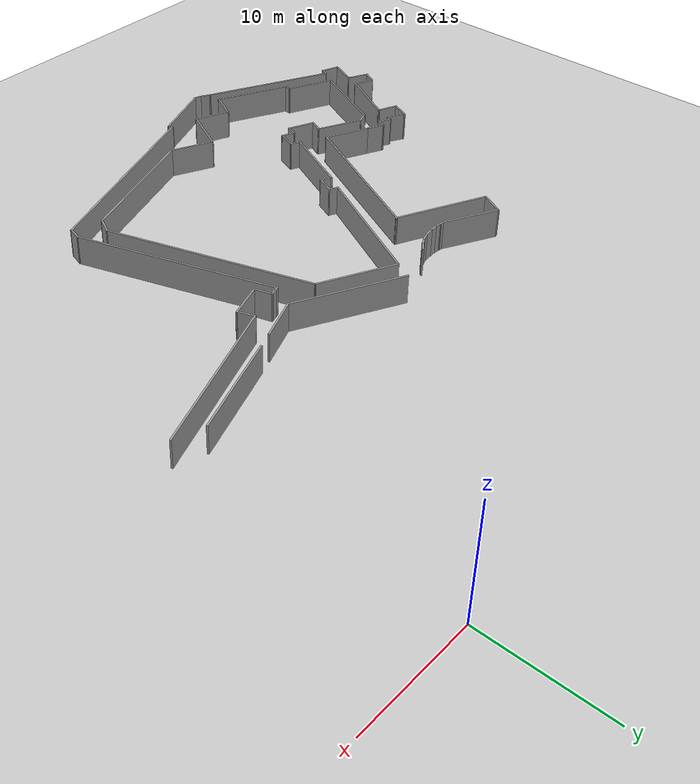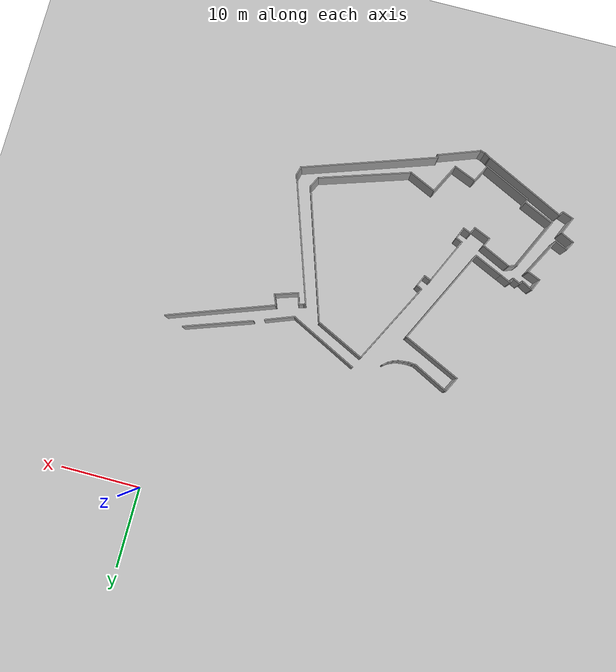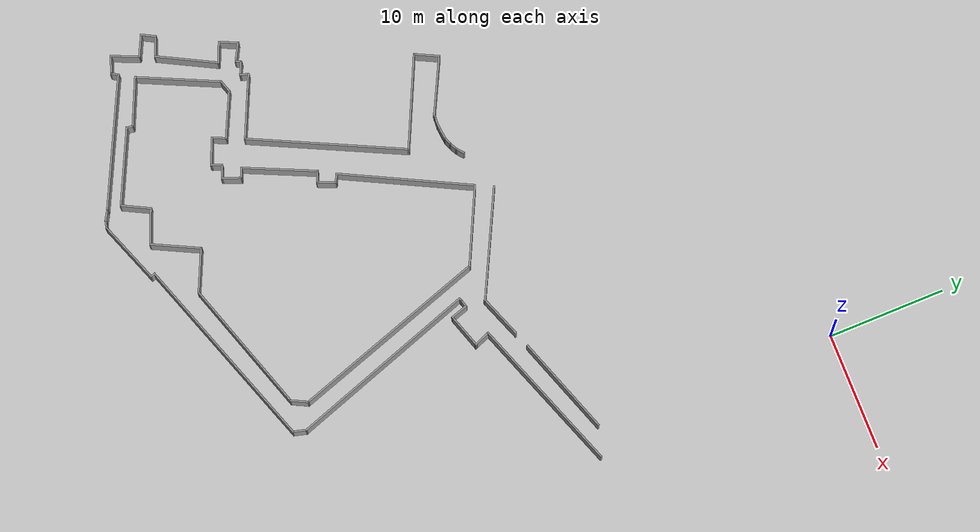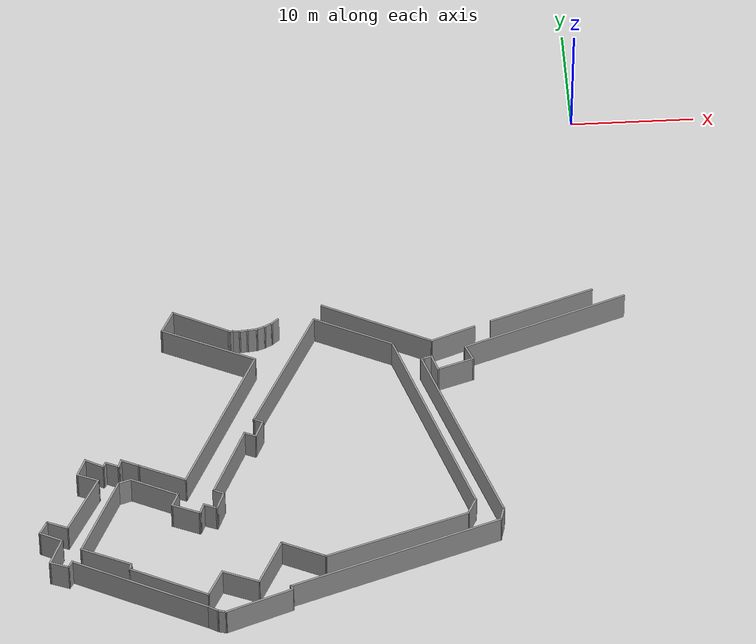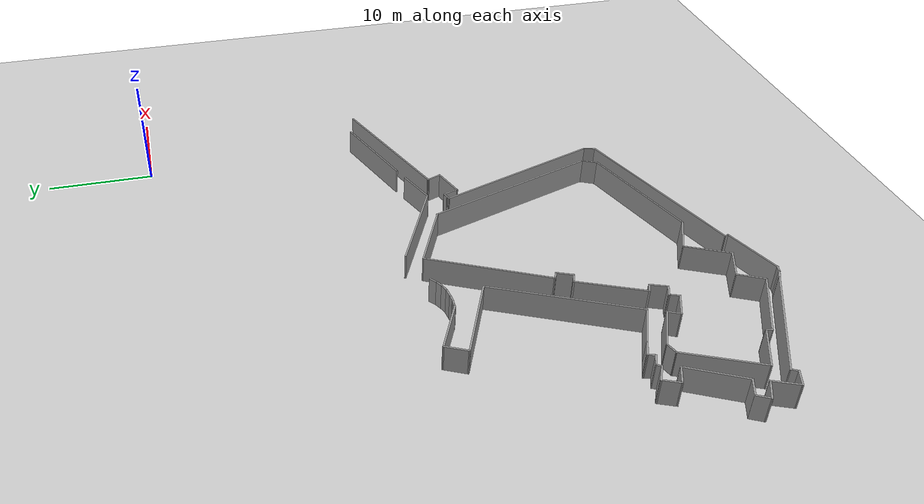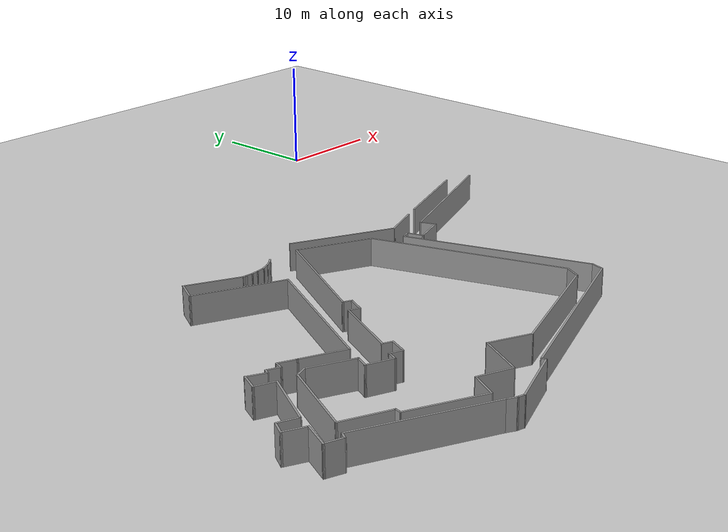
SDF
<sdf version="1.6">
 <world name="default">
  <model name="ground_plane">
   <static>1</static>
   <link name="link">
    <collision name="collision">
     <geometry><plane><normal>0 0 1</normal><size>100 100</size></plane></geometry>
     <surface><friction><ode><mu>100</mu><mu2>50</mu2></ode></friction></surface>
    </collision>
    <visual name="visual">
     <cast_shadows>0</cast_shadows>
     <geometry><plane><normal>0 0 1</normal><size>100 100</size></plane></geometry>
     <material>
      <script><uri>file://media/materials/scripts/gazebo.material</uri><name>Gazebo/Grey</name></script>
     </material>
    </visual>
   </link>
  </model>
  <model name="3rd_floor">
   <pose>-15.2077 -10.9942 0 0 -0 0</pose>
   <link name="Wall_19">
    <collision name="Wall_19_Collision">
     <geometry><box><size>13.8931 0.15 2.5</size></box></geometry>
     <pose>0 0 1.25 0 -0 0</pose>
    </collision>
    <visual name="Wall_19_Visual">
     <pose>0 0 1.25 0 -0 0</pose>
     <geometry><box><size>13.8931 0.15 2.5</size></box></geometry>
     <material>
      <script><uri>file://media/materials/scripts/gazebo.material</uri><name>Gazebo/Grey</name></script>
      <ambient>1 1 1 1</ambient>
     </material>
    </visual>
    <pose>11.0965 -12.7763 0 0 0 -2.79211</pose>
   </link>
   <link name="Wall_20">
    <collision name="Wall_20_Collision">
     <geometry><box><size>1.53196 0.15 2.5</size></box></geometry>
     <pose>0 0 1.25 0 -0 0</pose>
    </collision>
    <visual name="Wall_20_Visual">
     <pose>0 0 1.25 0 -0 0</pose>
     <geometry><box><size>1.53196 0.15 2.5</size></box></geometry>
     <material>
      <script><uri>file://media/materials/scripts/gazebo.material</uri><name>Gazebo/Grey</name></script>
      <ambient>1 1 1 1</ambient>
     </material>
    </visual>
    <pose>4.90091 -15.7692 0 0 0 -1.18415</pose>
   </link>
   <link name="Wall_21">
    <collision name="Wall_21_Collision">
     <geometry><box><size>3.11935 0.15 2.5</size></box></geometry>
     <pose>0 0 1.25 0 -0 0</pose>
    </collision>
    <visual name="Wall_21_Visual">
     <pose>0 0 1.25 0 -0 0</pose>
     <geometry><box><size>3.11935 0.15 2.5</size></box></geometry>
     <material>
      <script><uri>file://media/materials/scripts/gazebo.material</uri><name>Gazebo/Grey</name></script>
      <ambient>1 1 1 1</ambient>
     </material>
    </visual>
    <pose>3.75166 -16.8746 0 0 0 -2.82267</pose>
   </link>
   <link name="Wall_22">
    <collision name="Wall_22_Collision">
     <geometry><box><size>1.5718 0.15 2.5</size></box></geometry>
     <pose>0 0 1.25 0 -0 0</pose>
    </collision>
    <visual name="Wall_22_Visual">
     <pose>0 0 1.25 0 -0 0</pose>
     <geometry><box><size>1.5718 0.15 2.5</size></box></geometry>
     <material>
      <script><uri>file://media/materials/scripts/gazebo.material</uri><name>Gazebo/Grey</name></script>
      <ambient>1 1 1 1</ambient>
     </material>
    </visual>
    <pose>2.12904 -16.6618 0 0 -0 1.8748</pose>
   </link>
   <link name="Wall_23">
    <collision name="Wall_23_Collision">
     <geometry><box><size>0.75 0.15 2.5</size></box></geometry>
     <pose>0 0 1.25 0 -0 0</pose>
    </collision>
    <visual name="Wall_23_Visual">
     <pose>0 0 1.25 0 -0 0</pose>
     <geometry><box><size>0.75 0.15 2.5</size></box></geometry>
     <material>
      <script><uri>file://media/materials/scripts/gazebo.material</uri><name>Gazebo/Grey</name></script>
      <ambient>1 1 1 1</ambient>
     </material>
    </visual>
    <pose>1.62646 -16.0612 0 0 0 -2.87979</pose>
   </link>
   <link name="Wall_24">
    <collision name="Wall_24_Collision">
     <geometry><box><size>0.384084 0.15 2.5</size></box></geometry>
     <pose>0 0 1.25 0 -0 0</pose>
    </collision>
    <visual name="Wall_24_Visual">
     <pose>0 0 1.25 0 -0 0</pose>
     <geometry><box><size>0.384084 0.15 2.5</size></box></geometry>
     <material>
      <script><uri>file://media/materials/scripts/gazebo.material</uri><name>Gazebo/Grey</name></script>
      <ambient>1 1 1 1</ambient>
     </material>
    </visual>
    <pose>1.22746 -16.1809 0 0 0 -2.77406</pose>
   </link>
   <link name="Wall_28">
    <collision name="Wall_28_Collision">
     <geometry><box><size>16.723 0.15 2.5</size></box></geometry>
     <pose>0 0 1.25 0 -0 0</pose>
    </collision>
    <visual name="Wall_28_Visual">
     <pose>0 0 1.25 0 -0 0</pose>
     <geometry><box><size>16.723 0.15 2.5</size></box></geometry>
     <material>
      <script><uri>file://media/materials/scripts/gazebo.material</uri><name>Gazebo/Grey</name></script>
      <ambient>1 1 1 1</ambient>
     </material>
    </visual>
    <pose>3.78987 -24.0669 0 0 0 -1.24252</pose>
   </link>
   <link name="Wall_29">
    <collision name="Wall_29_Collision">
     <geometry><box><size>1.25 0.15 2.5</size></box></geometry>
     <pose>0 0 1.25 0 -0 0</pose>
    </collision>
    <visual name="Wall_29_Visual">
     <pose>0 0 1.25 0 -0 0</pose>
     <geometry><box><size>1.25 0.15 2.5</size></box></geometry>
     <material>
      <script><uri>file://media/materials/scripts/gazebo.material</uri><name>Gazebo/Grey</name></script>
      <ambient>1 1 1 1</ambient>
     </material>
    </visual>
    <pose>6.31916 -32.4422 0 0 0 -1.8326</pose>
   </link>
   <link name="Wall_30">
    <collision name="Wall_30_Collision">
     <geometry><box><size>17.4996 0.15 2.5</size></box></geometry>
     <pose>0 0 1.25 0 -0 0</pose>
    </collision>
    <visual name="Wall_30_Visual">
     <pose>0 0 1.25 0 -0 0</pose>
     <geometry><box><size>17.4996 0.15 2.5</size></box></geometry>
     <material>
      <script><uri>file://media/materials/scripts/gazebo.material</uri><name>Gazebo/Grey</name></script>
      <ambient>1 1 1 1</ambient>
     </material>
    </visual>
    <pose>-2.02263 -35.8056 0 0 0 -2.80901</pose>
   </link>
   <link name="Wall_31">
    <collision name="Wall_31_Collision">
     <geometry><box><size>0.5 0.15 2.5</size></box></geometry>
     <pose>0 0 1.25 0 -0 0</pose>
    </collision>
    <visual name="Wall_31_Visual">
     <pose>0 0 1.25 0 -0 0</pose>
     <geometry><box><size>0.5 0.15 2.5</size></box></geometry>
     <material>
      <script><uri>file://media/materials/scripts/gazebo.material</uri><name>Gazebo/Grey</name></script>
      <ambient>1 1 1 1</ambient>
     </material>
    </visual>
    <pose>-10.1768 -38.8068 0 0 0 -1.309</pose>
   </link>
   <link name="Wall_32">
    <collision name="Wall_32_Collision">
     <geometry><box><size>5.63609 0.15 2.5</size></box></geometry>
     <pose>0 0 1.25 0 -0 0</pose>
    </collision>
    <visual name="Wall_32_Visual">
     <pose>0 0 1.25 0 -0 0</pose>
     <geometry><box><size>5.63609 0.15 2.5</size></box></geometry>
     <material>
      <script><uri>file://media/materials/scripts/gazebo.material</uri><name>Gazebo/Grey</name></script>
      <ambient>1 1 1 1</ambient>
     </material>
    </visual>
    <pose>-12.7033 -39.9297 0 0 0 -2.78643</pose>
   </link>
   <link name="Wall_33">
    <collision name="Wall_33_Collision">
     <geometry><box><size>0.75 0.15 2.5</size></box></geometry>
     <pose>0 0 1.25 0 -0 0</pose>
    </collision>
    <visual name="Wall_33_Visual">
     <pose>0 0 1.25 0 -0 0</pose>
     <geometry><box><size>0.75 0.15 2.5</size></box></geometry>
     <material>
      <script><uri>file://media/materials/scripts/gazebo.material</uri><name>Gazebo/Grey</name></script>
      <ambient>1 1 1 1</ambient>
     </material>
    </visual>
    <pose>-15.565 -40.806 0 0 -0 2.87979</pose>
   </link>
   <link name="Wall_34">
    <collision name="Wall_34_Collision">
     <geometry><box><size>1 0.15 2.5</size></box></geometry>
     <pose>0 0 1.25 0 -0 0</pose>
    </collision>
    <visual name="Wall_34_Visual">
     <pose>0 0 1.25 0 -0 0</pose>
     <geometry><box><size>1 0.15 2.5</size></box></geometry>
     <material>
      <script><uri>file://media/materials/scripts/gazebo.material</uri><name>Gazebo/Grey</name></script>
      <ambient>1 1 1 1</ambient>
     </material>
    </visual>
    <pose>-16.2228 -40.5158 0 0 -0 2.61799</pose>
   </link>
   <link name="Wall_35">
    <collision name="Wall_35_Collision">
     <geometry><box><size>11.5195 0.15 2.5</size></box></geometry>
     <pose>0 0 1.25 0 -0 0</pose>
    </collision>
    <visual name="Wall_35_Visual">
     <pose>0 0 1.25 0 -0 0</pose>
     <geometry><box><size>11.5195 0.15 2.5</size></box></geometry>
     <material>
      <script><uri>file://media/materials/scripts/gazebo.material</uri><name>Gazebo/Grey</name></script>
      <ambient>1 1 1 1</ambient>
     </material>
    </visual>
    <pose>-21.688 -37.7862 0 0 -0 2.68289</pose>
   </link>
   <link name="Wall_36">
    <collision name="Wall_36_Collision">
     <geometry><box><size>0.75 0.15 2.5</size></box></geometry>
     <pose>0 0 1.25 0 -0 0</pose>
    </collision>
    <visual name="Wall_36_Visual">
     <pose>0 0 1.25 0 -0 0</pose>
     <geometry><box><size>0.75 0.15 2.5</size></box></geometry>
     <material>
      <script><uri>file://media/materials/scripts/gazebo.material</uri><name>Gazebo/Grey</name></script>
      <ambient>1 1 1 1</ambient>
     </material>
    </visual>
    <pose>-26.935 -35.5288 0 0 0 -2.0944</pose>
   </link>
   <link name="Wall_37">
    <collision name="Wall_37_Collision">
     <geometry><box><size>1.62868 0.15 2.5</size></box></geometry>
     <pose>0 0 1.25 0 -0 0</pose>
    </collision>
    <visual name="Wall_37_Visual">
     <pose>0 0 1.25 0 -0 0</pose>
     <geometry><box><size>1.62868 0.15 2.5</size></box></geometry>
     <material>
      <script><uri>file://media/materials/scripts/gazebo.material</uri><name>Gazebo/Grey</name></script>
      <ambient>1 1 1 1</ambient>
     </material>
    </visual>
    <pose>-27.7772 -35.5288 0 0 -0 2.78252</pose>
   </link>
   <link name="Wall_38">
    <collision name="Wall_38_Collision">
     <geometry><box><size>2.49688 0.15 2.5</size></box></geometry>
     <pose>0 0 1.25 0 -0 0</pose>
    </collision>
    <visual name="Wall_38_Visual">
     <pose>0 0 1.25 0 -0 0</pose>
     <geometry><box><size>2.49688 0.15 2.5</size></box></geometry>
     <material>
      <script><uri>file://media/materials/scripts/gazebo.material</uri><name>Gazebo/Grey</name></script>
      <ambient>1 1 1 1</ambient>
     </material>
    </visual>
    <pose>-28.0015 -34.1929 0 0 -0 1.16067</pose>
   </link>
   <link name="Wall_39">
    <collision name="Wall_39_Collision">
     <geometry><box><size>1.99764 0.15 2.5</size></box></geometry>
     <pose>0 0 1.25 0 -0 0</pose>
    </collision>
    <visual name="Wall_39_Visual">
     <pose>0 0 1.25 0 -0 0</pose>
     <geometry><box><size>1.99764 0.15 2.5</size></box></geometry>
     <material>
      <script><uri>file://media/materials/scripts/gazebo.material</uri><name>Gazebo/Grey</name></script>
      <ambient>1 1 1 1</ambient>
     </material>
    </visual>
    <pose>-28.363 -32.7098 0 0 -0 2.68543</pose>
   </link>
   <link name="Wall_40">
    <collision name="Wall_40_Collision">
     <geometry><box><size>1.34318 0.15 2.5</size></box></geometry>
     <pose>0 0 1.25 0 -0 0</pose>
    </collision>
    <visual name="Wall_40_Visual">
     <pose>0 0 1.25 0 -0 0</pose>
     <geometry><box><size>1.34318 0.15 2.5</size></box></geometry>
     <material>
      <script><uri>file://media/materials/scripts/gazebo.material</uri><name>Gazebo/Grey</name></script>
      <ambient>1 1 1 1</ambient>
     </material>
    </visual>
    <pose>-28.9077 -31.7786 0 0 -0 1.07343</pose>
   </link>
   <link name="Wall_41">
    <collision name="Wall_41_Collision">
     <geometry><box><size>1.82539 0.15 2.5</size></box></geometry>
     <pose>0 0 1.25 0 -0 0</pose>
    </collision>
    <visual name="Wall_41_Visual">
     <pose>0 0 1.25 0 -0 0</pose>
     <geometry><box><size>1.82539 0.15 2.5</size></box></geometry>
     <material>
      <script><uri>file://media/materials/scripts/gazebo.material</uri><name>Gazebo/Grey</name></script>
      <ambient>1 1 1 1</ambient>
     </material>
    </visual>
    <pose>-27.8387 -31.5773 0 0 0 -0.395858</pose>
   </link>
   <link name="Wall_42">
    <collision name="Wall_42_Collision">
     <geometry><box><size>5.40682 0.15 2.5</size></box></geometry>
     <pose>0 0 1.25 0 -0 0</pose>
    </collision>
    <visual name="Wall_42_Visual">
     <pose>0 0 1.25 0 -0 0</pose>
     <geometry><box><size>5.40682 0.15 2.5</size></box></geometry>
     <material>
      <script><uri>file://media/materials/scripts/gazebo.material</uri><name>Gazebo/Grey</name></script>
      <ambient>1 1 1 1</ambient>
     </material>
    </visual>
    <pose>-25.8364 -29.5771 0 0 -0 1.08409</pose>
   </link>
   <link name="Wall_43">
    <collision name="Wall_43_Collision">
     <geometry><box><size>1.86837 0.15 2.5</size></box></geometry>
     <pose>0 0 1.25 0 -0 0</pose>
    </collision>
    <visual name="Wall_43_Visual">
     <pose>0 0 1.25 0 -0 0</pose>
     <geometry><box><size>1.86837 0.15 2.5</size></box></geometry>
     <material>
      <script><uri>file://media/materials/scripts/gazebo.material</uri><name>Gazebo/Grey</name></script>
      <ambient>1 1 1 1</ambient>
     </material>
    </visual>
    <pose>-25.3986 -26.9197 0 0 -0 2.74208</pose>
   </link>
   <link name="Wall_44">
    <collision name="Wall_44_Collision">
     <geometry><box><size>1.72521 0.15 2.5</size></box></geometry>
     <pose>0 0 1.25 0 -0 0</pose>
    </collision>
    <visual name="Wall_44_Visual">
     <pose>0 0 1.25 0 -0 0</pose>
     <geometry><box><size>1.72521 0.15 2.5</size></box></geometry>
     <material>
      <script><uri>file://media/materials/scripts/gazebo.material</uri><name>Gazebo/Grey</name></script>
      <ambient>1 1 1 1</ambient>
     </material>
    </visual>
    <pose>-25.8735 -25.8643 0 0 -0 1.15711</pose>
   </link>
   <link name="Wall_45">
    <collision name="Wall_45_Collision">
     <geometry><box><size>1.70823 0.15 2.5</size></box></geometry>
     <pose>0 0 1.25 0 -0 0</pose>
    </collision>
    <visual name="Wall_45_Visual">
     <pose>0 0 1.25 0 -0 0</pose>
     <geometry><box><size>1.70823 0.15 2.5</size></box></geometry>
     <material>
      <script><uri>file://media/materials/scripts/gazebo.material</uri><name>Gazebo/Grey</name></script>
      <ambient>1 1 1 1</ambient>
     </material>
    </visual>
    <pose>-24.8709 -25.5125 0 0 0 -0.493941</pose>
   </link>
   <link name="Wall_46">
    <collision name="Wall_46_Collision">
     <geometry><box><size>0.590789 0.15 2.5</size></box></geometry>
     <pose>0 0 1.25 0 -0 0</pose>
    </collision>
    <visual name="Wall_46_Visual">
     <pose>0 0 1.25 0 -0 0</pose>
     <geometry><box><size>0.590789 0.15 2.5</size></box></geometry>
     <material>
      <script><uri>file://media/materials/scripts/gazebo.material</uri><name>Gazebo/Grey</name></script>
      <ambient>1 1 1 1</ambient>
     </material>
    </visual>
    <pose>-24.0794 -25.6884 0 0 -0 1.07145</pose>
   </link>
   <link name="Wall_47">
    <collision name="Wall_47_Collision">
     <geometry><box><size>1.23599 0.15 2.5</size></box></geometry>
     <pose>0 0 1.25 0 -0 0</pose>
    </collision>
    <visual name="Wall_47_Visual">
     <pose>0 0 1.25 0 -0 0</pose>
     <geometry><box><size>1.23599 0.15 2.5</size></box></geometry>
     <material>
      <script><uri>file://media/materials/scripts/gazebo.material</uri><name>Gazebo/Grey</name></script>
      <ambient>1 1 1 1</ambient>
     </material>
    </visual>
    <pose>-23.4814 -25.7236 0 0 0 -0.43467</pose>
   </link>
   <link name="Wall_48">
    <collision name="Wall_48_Collision">
     <geometry><box><size>0.81747 0.15 2.5</size></box></geometry>
     <pose>0 0 1.25 0 -0 0</pose>
    </collision>
    <visual name="Wall_48_Visual">
     <pose>0 0 1.25 0 -0 0</pose>
     <geometry><box><size>0.81747 0.15 2.5</size></box></geometry>
     <material>
      <script><uri>file://media/materials/scripts/gazebo.material</uri><name>Gazebo/Grey</name></script>
      <ambient>1 1 1 1</ambient>
     </material>
    </visual>
    <pose>-22.8833 -25.6357 0 0 -0 1.24905</pose>
   </link>
   <link name="Wall_49">
    <collision name="Wall_49_Collision">
     <geometry><box><size>1.66105 0.15 2.5</size></box></geometry>
     <pose>0 0 1.25 0 -0 0</pose>
    </collision>
    <visual name="Wall_49_Visual">
     <pose>0 0 1.25 0 -0 0</pose>
     <geometry><box><size>1.66105 0.15 2.5</size></box></geometry>
     <material>
      <script><uri>file://media/materials/scripts/gazebo.material</uri><name>Gazebo/Grey</name></script>
      <ambient>1 1 1 1</ambient>
     </material>
    </visual>
    <pose>-22.0918 -25.6357 0 0 0 -0.432408</pose>
   </link>
   <link name="Wall_50">
    <collision name="Wall_50_Collision">
     <geometry><box><size>4.0544 0.15 2.5</size></box></geometry>
     <pose>0 0 1.25 0 -0 0</pose>
    </collision>
    <visual name="Wall_50_Visual">
     <pose>0 0 1.25 0 -0 0</pose>
     <geometry><box><size>4.0544 0.15 2.5</size></box></geometry>
     <material>
      <script><uri>file://media/materials/scripts/gazebo.material</uri><name>Gazebo/Grey</name></script>
      <ambient>1 1 1 1</ambient>
     </material>
    </visual>
    <pose>-19.6321 -26.7677 0 0 0 -0.430896</pose>
   </link>
   <link name="Wall_514">
    <collision name="Wall_514_Collision">
     <geometry><box><size>9.61679 0.15 2.5</size></box></geometry>
     <pose>0 0 1.25 0 -0 0</pose>
    </collision>
    <visual name="Wall_514_Visual">
     <pose>0 0 1.25 0 -0 0</pose>
     <geometry><box><size>9.61679 0.15 2.5</size></box></geometry>
     <material>
      <script><uri>file://media/materials/scripts/gazebo.material</uri><name>Gazebo/Grey</name></script>
      <ambient>1 1 1 1</ambient>
     </material>
    </visual>
    <pose>-2.20509 -12.2196 0 0 0 -0.463648</pose>
   </link>
   <link name="Wall_515">
    <collision name="Wall_515_Collision">
     <geometry><box><size>3.83098 0.15 2.5</size></box></geometry>
     <pose>0 0 1.25 0 -0 0</pose>
    </collision>
    <visual name="Wall_515_Visual">
     <pose>0 0 1.25 0 -0 0</pose>
     <geometry><box><size>3.83098 0.15 2.5</size></box></geometry>
     <material>
      <script><uri>file://media/materials/scripts/gazebo.material</uri><name>Gazebo/Grey</name></script>
      <ambient>1 1 1 1</ambient>
     </material>
    </visual>
    <pose>3.74997 -13.6851 0 0 -0 0.361729</pose>
   </link>
   <link name="Wall_519">
    <collision name="Wall_519_Collision">
     <geometry><box><size>8.83142 0.15 2.5</size></box></geometry>
     <pose>0 0 1.25 0 -0 0</pose>
    </collision>
    <visual name="Wall_519_Visual">
     <pose>0 0 1.25 0 -0 0</pose>
     <geometry><box><size>8.83142 0.15 2.5</size></box></geometry>
     <material>
      <script><uri>file://media/materials/scripts/gazebo.material</uri><name>Gazebo/Grey</name></script>
      <ambient>1 1 1 1</ambient>
     </material>
    </visual>
    <pose>10.9612 -11.0797 0 0 -0 0.338698</pose>
   </link>
   <link name="Wall_52">
    <collision name="Wall_52_Collision">
     <geometry><box><size>13.637 0.15 2.5</size></box></geometry>
     <pose>0 0 1.25 0 -0 0</pose>
    </collision>
    <visual name="Wall_52_Visual">
     <pose>0 0 1.25 0 -0 0</pose>
     <geometry><box><size>13.637 0.15 2.5</size></box></geometry>
     <material>
      <script><uri>file://media/materials/scripts/gazebo.material</uri><name>Gazebo/Grey</name></script>
      <ambient>1 1 1 1</ambient>
     </material>
    </visual>
    <pose>-14.9163 -21.5152 0 0 -0 1.11935</pose>
   </link>
   <link name="Wall_528">
    <collision name="Wall_528_Collision">
     <geometry><box><size>6.84616 0.15 2.5</size></box></geometry>
     <pose>0 0 1.25 0 -0 0</pose>
    </collision>
    <visual name="Wall_528_Visual">
     <pose>0 0 1.25 0 -0 0</pose>
     <geometry><box><size>6.84616 0.15 2.5</size></box></geometry>
     <material>
      <script><uri>file://media/materials/scripts/gazebo.material</uri><name>Gazebo/Grey</name></script>
      <ambient>1 1 1 1</ambient>
     </material>
    </visual>
    <pose>-4.09104 -12.993 0 0 0 -0.452778</pose>
   </link>
   <link name="Wall_529">
    <collision name="Wall_529_Collision">
     <geometry><box><size>17.4674 0.15 2.5</size></box></geometry>
     <pose>0 0 1.25 0 -0 0</pose>
    </collision>
    <visual name="Wall_529_Visual">
     <pose>0 0 1.25 0 -0 0</pose>
     <geometry><box><size>17.4674 0.15 2.5</size></box></geometry>
     <material>
      <script><uri>file://media/materials/scripts/gazebo.material</uri><name>Gazebo/Grey</name></script>
      <ambient>1 1 1 1</ambient>
     </material>
    </visual>
    <pose>1.64559 -22.6761 0 0 0 -1.25053</pose>
   </link>
   <link name="Wall_53">
    <collision name="Wall_53_Collision">
     <geometry><box><size>8.11266 0.15 2.5</size></box></geometry>
     <pose>0 0 1.25 0 -0 0</pose>
    </collision>
    <visual name="Wall_53_Visual">
     <pose>0 0 1.25 0 -0 0</pose>
     <geometry><box><size>8.11266 0.15 2.5</size></box></geometry>
     <material>
      <script><uri>file://media/materials/scripts/gazebo.material</uri><name>Gazebo/Grey</name></script>
      <ambient>1 1 1 1</ambient>
     </material>
    </visual>
    <pose>-15.5749 -13.7482 0 0 -0 2.70067</pose>
   </link>
   <link name="Wall_530">
    <collision name="Wall_530_Collision">
     <geometry><box><size>1.6056 0.15 2.5</size></box></geometry>
     <pose>0 0 1.25 0 -0 0</pose>
    </collision>
    <visual name="Wall_530_Visual">
     <pose>0 0 1.25 0 -0 0</pose>
     <geometry><box><size>1.6056 0.15 2.5</size></box></geometry>
     <material>
      <script><uri>file://media/materials/scripts/gazebo.material</uri><name>Gazebo/Grey</name></script>
      <ambient>1 1 1 1</ambient>
     </material>
    </visual>
    <pose>4.04602 -31.5455 0 0 0 -2.03444</pose>
   </link>
   <link name="Wall_531">
    <collision name="Wall_531_Collision">
     <geometry><box><size>11.8837 0.15 2.5</size></box></geometry>
     <pose>0 0 1.25 0 -0 0</pose>
    </collision>
    <visual name="Wall_531_Visual">
     <pose>0 0 1.25 0 -0 0</pose>
     <geometry><box><size>11.8837 0.15 2.5</size></box></geometry>
     <material>
      <script><uri>file://media/materials/scripts/gazebo.material</uri><name>Gazebo/Grey</name></script>
      <ambient>1 1 1 1</ambient>
     </material>
    </visual>
    <pose>-1.85335 -34.0273 0 0 0 -2.82423</pose>
   </link>
   <link name="Wall_532">
    <collision name="Wall_532_Collision">
     <geometry><box><size>3.82702 0.15 2.5</size></box></geometry>
     <pose>0 0 1.25 0 -0 0</pose>
    </collision>
    <visual name="Wall_532_Visual">
     <pose>0 0 1.25 0 -0 0</pose>
     <geometry><box><size>3.82702 0.15 2.5</size></box></geometry>
     <material>
      <script><uri>file://media/materials/scripts/gazebo.material</uri><name>Gazebo/Grey</name></script>
      <ambient>1 1 1 1</ambient>
     </material>
    </visual>
    <pose>-9.09533 -35.0851 0 0 -0 2.70764</pose>
   </link>
   <link name="Wall_533">
    <collision name="Wall_533_Collision">
     <geometry><box><size>4.33486 0.15 2.5</size></box></geometry>
     <pose>0 0 1.25 0 -0 0</pose>
    </collision>
    <visual name="Wall_533_Visual">
     <pose>0 0 1.25 0 -0 0</pose>
     <geometry><box><size>4.33486 0.15 2.5</size></box></geometry>
     <material>
      <script><uri>file://media/materials/scripts/gazebo.material</uri><name>Gazebo/Grey</name></script>
      <ambient>1 1 1 1</ambient>
     </material>
    </visual>
    <pose>-11.6992 -36.1836 0 0 0 -2.03444</pose>
   </link>
   <link name="Wall_534">
    <collision name="Wall_534_Collision">
     <geometry><box><size>3.14196 0.15 2.5</size></box></geometry>
     <pose>0 0 1.25 0 -0 0</pose>
    </collision>
    <visual name="Wall_534_Visual">
     <pose>0 0 1.25 0 -0 0</pose>
     <geometry><box><size>3.14196 0.15 2.5</size></box></geometry>
     <material>
      <script><uri>file://media/materials/scripts/gazebo.material</uri><name>Gazebo/Grey</name></script>
      <ambient>1 1 1 1</ambient>
     </material>
    </visual>
    <pose>-14.0183 -37.4856 0 0 -0 2.75099</pose>
   </link>
   <link name="Wall_535">
    <collision name="Wall_535_Collision">
     <geometry><box><size>2.62479 0.15 2.5</size></box></geometry>
     <pose>0 0 1.25 0 -0 0</pose>
    </collision>
    <visual name="Wall_535_Visual">
     <pose>0 0 1.25 0 -0 0</pose>
     <geometry><box><size>2.62479 0.15 2.5</size></box></geometry>
     <material>
      <script><uri>file://media/materials/scripts/gazebo.material</uri><name>Gazebo/Grey</name></script>
      <ambient>1 1 1 1</ambient>
     </material>
    </visual>
    <pose>-15.9711 -38.0145 0 0 0 -2.04915</pose>
   </link>
   <link name="Wall_536">
    <collision name="Wall_536_Collision">
     <geometry><box><size>6.66423 0.15 2.5</size></box></geometry>
     <pose>0 0 1.25 0 -0 0</pose>
    </collision>
    <visual name="Wall_536_Visual">
     <pose>0 0 1.25 0 -0 0</pose>
     <geometry><box><size>6.66423 0.15 2.5</size></box></geometry>
     <material>
      <script><uri>file://media/materials/scripts/gazebo.material</uri><name>Gazebo/Grey</name></script>
      <ambient>1 1 1 1</ambient>
     </material>
    </visual>
    <pose>-19.4701 -37.689 0 0 -0 2.68912</pose>
   </link>
   <link name="Wall_537">
    <collision name="Wall_537_Collision">
     <geometry><box><size>0.644958 0.15 2.5</size></box></geometry>
     <pose>0 0 1.25 0 -0 0</pose>
    </collision>
    <visual name="Wall_537_Visual">
     <pose>0 0 1.25 0 -0 0</pose>
     <geometry><box><size>0.644958 0.15 2.5</size></box></geometry>
     <material>
      <script><uri>file://media/materials/scripts/gazebo.material</uri><name>Gazebo/Grey</name></script>
      <ambient>1 1 1 1</ambient>
     </material>
    </visual>
    <pose>-22.3587 -36.0209 0 0 -0 1.40565</pose>
   </link>
   <link name="Wall_538">
    <collision name="Wall_538_Collision">
     <geometry><box><size>4.26465 0.15 2.5</size></box></geometry>
     <pose>0 0 1.25 0 -0 0</pose>
    </collision>
    <visual name="Wall_538_Visual">
     <pose>0 0 1.25 0 -0 0</pose>
     <geometry><box><size>4.26465 0.15 2.5</size></box></geometry>
     <material>
      <script><uri>file://media/materials/scripts/gazebo.material</uri><name>Gazebo/Grey</name></script>
      <ambient>1 1 1 1</ambient>
     </material>
    </visual>
    <pose>-24.1896 -34.9224 0 0 -0 2.71333</pose>
   </link>
   <link name="Wall_539">
    <collision name="Wall_539_Collision">
     <geometry><box><size>7.24839 0.15 2.5</size></box></geometry>
     <pose>0 0 1.25 0 -0 0</pose>
    </collision>
    <visual name="Wall_539_Visual">
     <pose>0 0 1.25 0 -0 0</pose>
     <geometry><box><size>7.24839 0.15 2.5</size></box></geometry>
     <material>
      <script><uri>file://media/materials/scripts/gazebo.material</uri><name>Gazebo/Grey</name></script>
      <ambient>1 1 1 1</ambient>
     </material>
    </visual>
    <pose>-24.5558 -30.8539 0 0 -0 1.13278</pose>
   </link>
   <link name="Wall_54">
    <collision name="Wall_54_Collision">
     <geometry><box><size>2.23061 0.15 2.5</size></box></geometry>
     <pose>0 0 1.25 0 -0 0</pose>
    </collision>
    <visual name="Wall_54_Visual">
     <pose>0 0 1.25 0 -0 0</pose>
     <geometry><box><size>2.23061 0.15 2.5</size></box></geometry>
     <material>
      <script><uri>file://media/materials/scripts/gazebo.material</uri><name>Gazebo/Grey</name></script>
      <ambient>1 1 1 1</ambient>
     </material>
    </visual>
    <pose>-18.7102 -11.1185 0 0 -0 1.10715</pose>
   </link>
   <link name="Wall_540">
    <collision name="Wall_540_Collision">
     <geometry><box><size>1.17927 0.15 2.5</size></box></geometry>
     <pose>0 0 1.25 0 -0 0</pose>
    </collision>
    <visual name="Wall_540_Visual">
     <pose>0 0 1.25 0 -0 0</pose>
     <geometry><box><size>1.17927 0.15 2.5</size></box></geometry>
     <material>
      <script><uri>file://media/materials/scripts/gazebo.material</uri><name>Gazebo/Grey</name></script>
      <ambient>1 1 1 1</ambient>
     </material>
    </visual>
    <pose>-22.5622 -27.477 0 0 -0 0.321751</pose>
   </link>
   <link name="Wall_541">
    <collision name="Wall_541_Collision">
     <geometry><box><size>4.11718 0.15 2.5</size></box></geometry>
     <pose>0 0 1.25 0 -0 0</pose>
    </collision>
    <visual name="Wall_541_Visual">
     <pose>0 0 1.25 0 -0 0</pose>
     <geometry><box><size>4.11718 0.15 2.5</size></box></geometry>
     <material>
      <script><uri>file://media/materials/scripts/gazebo.material</uri><name>Gazebo/Grey</name></script>
      <ambient>1 1 1 1</ambient>
     </material>
    </visual>
    <pose>-20.2838 -28.1686 0 0 0 -0.445301</pose>
   </link>
   <link name="Wall_542">
    <collision name="Wall_542_Collision">
     <geometry><box><size>1.31389 0.15 2.5</size></box></geometry>
     <pose>0 0 1.25 0 -0 0</pose>
    </collision>
    <visual name="Wall_542_Visual">
     <pose>0 0 1.25 0 -0 0</pose>
     <geometry><box><size>1.31389 0.15 2.5</size></box></geometry>
     <material>
      <script><uri>file://media/materials/scripts/gazebo.material</uri><name>Gazebo/Grey</name></script>
      <ambient>1 1 1 1</ambient>
     </material>
    </visual>
    <pose>-18.7354 -29.5524 0 0 0 -1.99914</pose>
   </link>
   <link name="Wall_543">
    <collision name="Wall_543_Collision">
     <geometry><box><size>2.43769 0.15 2.5</size></box></geometry>
     <pose>0 0 1.25 0 -0 0</pose>
    </collision>
    <visual name="Wall_543_Visual">
     <pose>0 0 1.25 0 -0 0</pose>
     <geometry><box><size>2.43769 0.15 2.5</size></box></geometry>
     <material>
      <script><uri>file://media/materials/scripts/gazebo.material</uri><name>Gazebo/Grey</name></script>
      <ambient>1 1 1 1</ambient>
     </material>
    </visual>
    <pose>-17.9248 -30.5303 0 0 0 -0.402912</pose>
   </link>
   <link name="Wall_544">
    <collision name="Wall_544_Collision">
     <geometry><box><size>1.0314 0.15 2.5</size></box></geometry>
     <pose>0 0 1.25 0 -0 0</pose>
    </collision>
    <visual name="Wall_544_Visual">
     <pose>0 0 1.25 0 -0 0</pose>
     <geometry><box><size>1.0314 0.15 2.5</size></box></geometry>
     <material>
      <script><uri>file://media/materials/scripts/gazebo.material</uri><name>Gazebo/Grey</name></script>
      <ambient>1 1 1 1</ambient>
     </material>
    </visual>
    <pose>-16.7067 -30.5705 0 0 -0 1.18479</pose>
   </link>
   <link name="Wall_545">
    <collision name="Wall_545_Collision">
     <geometry><box><size>1.22336 0.15 2.5</size></box></geometry>
     <pose>0 0 1.25 0 -0 0</pose>
    </collision>
    <visual name="Wall_545_Visual">
     <pose>0 0 1.25 0 -0 0</pose>
     <geometry><box><size>1.22336 0.15 2.5</size></box></geometry>
     <material>
      <script><uri>file://media/materials/scripts/gazebo.material</uri><name>Gazebo/Grey</name></script>
      <ambient>1 1 1 1</ambient>
     </material>
    </visual>
    <pose>-16.0438 -30.3648 0 0 0 -0.387013</pose>
   </link>
   <link name="Wall_546">
    <collision name="Wall_546_Collision">
     <geometry><box><size>1.72571 0.15 2.5</size></box></geometry>
     <pose>0 0 1.25 0 -0 0</pose>
    </collision>
    <visual name="Wall_546_Visual">
     <pose>0 0 1.25 0 -0 0</pose>
     <geometry><box><size>1.72571 0.15 2.5</size></box></geometry>
     <material>
      <script><uri>file://media/materials/scripts/gazebo.material</uri><name>Gazebo/Grey</name></script>
      <ambient>1 1 1 1</ambient>
     </material>
    </visual>
    <pose>-15.2542 -29.8358 0 0 -0 1.19029</pose>
   </link>
   <link name="Wall_547">
    <collision name="Wall_547_Collision">
     <geometry><box><size>0.996875 0.15 2.5</size></box></geometry>
     <pose>0 0 1.25 0 -0 0</pose>
    </collision>
    <visual name="Wall_547_Visual">
     <pose>0 0 1.25 0 -0 0</pose>
     <geometry><box><size>0.996875 0.15 2.5</size></box></geometry>
     <material>
      <script><uri>file://media/materials/scripts/gazebo.material</uri><name>Gazebo/Grey</name></script>
      <ambient>1 1 1 1</ambient>
     </material>
    </visual>
    <pose>-15.3492 -28.934 0 0 -0 2.72768</pose>
   </link>
   <link name="Wall_548">
    <collision name="Wall_548_Collision">
     <geometry><box><size>6.41289 0.15 2.5</size></box></geometry>
     <pose>0 0 1.25 0 -0 0</pose>
    </collision>
    <visual name="Wall_548_Visual">
     <pose>0 0 1.25 0 -0 0</pose>
     <geometry><box><size>6.41289 0.15 2.5</size></box></geometry>
     <material>
      <script><uri>file://media/materials/scripts/gazebo.material</uri><name>Gazebo/Grey</name></script>
      <ambient>1 1 1 1</ambient>
     </material>
    </visual>
    <pose>-14.4198 -25.9157 0 0 -0 1.14202</pose>
   </link>
   <link name="Wall_549">
    <collision name="Wall_549_Collision">
     <geometry><box><size>1.08477 0.15 2.5</size></box></geometry>
     <pose>0 0 1.25 0 -0 0</pose>
    </collision>
    <visual name="Wall_549_Visual">
     <pose>0 0 1.25 0 -0 0</pose>
     <geometry><box><size>1.08477 0.15 2.5</size></box></geometry>
     <material>
      <script><uri>file://media/materials/scripts/gazebo.material</uri><name>Gazebo/Grey</name></script>
      <ambient>1 1 1 1</ambient>
     </material>
    </visual>
    <pose>-12.704 -23.2531 0 0 0 -0.40779</pose>
   </link>
   <link name="Wall_55">
    <collision name="Wall_55_Collision">
     <geometry><box><size>5.08923 0.15 2.5</size></box></geometry>
     <pose>0 0 1.25 0 -0 0</pose>
    </collision>
    <visual name="Wall_55_Visual">
     <pose>0 0 1.25 0 -0 0</pose>
     <geometry><box><size>5.08923 0.15 2.5</size></box></geometry>
     <material>
      <script><uri>file://media/materials/scripts/gazebo.material</uri><name>Gazebo/Grey</name></script>
      <ambient>1 1 1 1</ambient>
     </material>
    </visual>
    <pose>-16.0402 -11.3006 0 0 0 -0.467311</pose>
   </link>
   <link name="Wall_550">
    <collision name="Wall_550_Collision">
     <geometry><box><size>1.6919 0.15 2.5</size></box></geometry>
     <pose>0 0 1.25 0 -0 0</pose>
    </collision>
    <visual name="Wall_550_Visual">
     <pose>0 0 1.25 0 -0 0</pose>
     <geometry><box><size>1.6919 0.15 2.5</size></box></geometry>
     <material>
      <script><uri>file://media/materials/scripts/gazebo.material</uri><name>Gazebo/Grey</name></script>
      <ambient>1 1 1 1</ambient>
     </material>
    </visual>
    <pose>-11.9667 -22.7318 0 0 -0 1.15951</pose>
   </link>
   <link name="Wall_551">
    <collision name="Wall_551_Collision">
     <geometry><box><size>0.877801 0.15 2.5</size></box></geometry>
     <pose>0 0 1.25 0 -0 0</pose>
    </collision>
    <visual name="Wall_551_Visual">
     <pose>0 0 1.25 0 -0 0</pose>
     <geometry><box><size>0.877801 0.15 2.5</size></box></geometry>
     <material>
      <script><uri>file://media/materials/scripts/gazebo.material</uri><name>Gazebo/Grey</name></script>
      <ambient>1 1 1 1</ambient>
     </material>
    </visual>
    <pose>-11.984 -21.8624 0 0 -0 2.67794</pose>
   </link>
   <link name="Wall_552">
    <collision name="Wall_552_Collision">
     <geometry><box><size>11.4675 0.15 2.5</size></box></geometry>
     <pose>0 0 1.25 0 -0 0</pose>
    </collision>
    <visual name="Wall_552_Visual">
     <pose>0 0 1.25 0 -0 0</pose>
     <geometry><box><size>11.4675 0.15 2.5</size></box></geometry>
     <material>
      <script><uri>file://media/materials/scripts/gazebo.material</uri><name>Gazebo/Grey</name></script>
      <ambient>1 1 1 1</ambient>
     </material>
    </visual>
    <pose>-9.7463 -16.6547 0 0 -0 1.10072</pose>
   </link>
   <link name="Wall_593">
    <collision name="Wall_593_Collision">
     <geometry><box><size>0.807495 0.15 2.5</size></box></geometry>
     <pose>0 0 1.25 0 -0 0</pose>
    </collision>
    <visual name="Wall_593_Visual">
     <pose>0 0 1.25 0 -0 0</pose>
     <geometry><box><size>0.807495 0.15 2.5</size></box></geometry>
     <material>
      <script><uri>file://media/materials/scripts/gazebo.material</uri><name>Gazebo/Grey</name></script>
      <ambient>1 1 1 1</ambient>
     </material>
    </visual>
    <pose>-10.2531 -11.5684 0 0 0 -2.45586</pose>
   </link>
   <link name="Wall_594">
    <collision name="Wall_594_Collision">
     <geometry><box><size>0.781343 0.15 2.5</size></box></geometry>
     <pose>0 0 1.25 0 -0 0</pose>
    </collision>
    <visual name="Wall_594_Visual">
     <pose>0 0 1.25 0 -0 0</pose>
     <geometry><box><size>0.781343 0.15 2.5</size></box></geometry>
     <material>
      <script><uri>file://media/materials/scripts/gazebo.material</uri><name>Gazebo/Grey</name></script>
      <ambient>1 1 1 1</ambient>
     </material>
    </visual>
    <pose>-10.7851 -11.9269 0 0 0 -2.64517</pose>
   </link>
   <link name="Wall_595">
    <collision name="Wall_595_Collision">
     <geometry><box><size>0.815985 0.15 2.5</size></box></geometry>
     <pose>0 0 1.25 0 -0 0</pose>
    </collision>
    <visual name="Wall_595_Visual">
     <pose>0 0 1.25 0 -0 0</pose>
     <geometry><box><size>0.815985 0.15 2.5</size></box></geometry>
     <material>
      <script><uri>file://media/materials/scripts/gazebo.material</uri><name>Gazebo/Grey</name></script>
      <ambient>1 1 1 1</ambient>
     </material>
    </visual>
    <pose>-11.375 -12.1929 0 0 0 -2.78689</pose>
   </link>
   <link name="Wall_596">
    <collision name="Wall_596_Collision">
     <geometry><box><size>0.918897 0.15 2.5</size></box></geometry>
     <pose>0 0 1.25 0 -0 0</pose>
    </collision>
    <visual name="Wall_596_Visual">
     <pose>0 0 1.25 0 -0 0</pose>
     <geometry><box><size>0.918897 0.15 2.5</size></box></geometry>
     <material>
      <script><uri>file://media/materials/scripts/gazebo.material</uri><name>Gazebo/Grey</name></script>
      <ambient>1 1 1 1</ambient>
     </material>
    </visual>
    <pose>-12.0689 -12.3548 0 0 0 -3.02097</pose>
   </link>
   <link name="Wall_597">
    <collision name="Wall_597_Collision">
     <geometry><box><size>0.753172 0.15 2.5</size></box></geometry>
     <pose>0 0 1.25 0 -0 0</pose>
    </collision>
    <visual name="Wall_597_Visual">
     <pose>0 0 1.25 0 -0 0</pose>
     <geometry><box><size>0.753172 0.15 2.5</size></box></geometry>
     <material>
      <script><uri>file://media/materials/scripts/gazebo.material</uri><name>Gazebo/Grey</name></script>
      <ambient>1 1 1 1</ambient>
     </material>
    </visual>
    <pose>-12.7513 -12.4242 0 0 0 -3.06482</pose>
   </link>
   <link name="Wall_598">
    <collision name="Wall_598_Collision">
     <geometry><box><size>0.660972 0.15 2.5</size></box></geometry>
     <pose>0 0 1.25 0 -0 0</pose>
    </collision>
    <visual name="Wall_598_Visual">
     <pose>0 0 1.25 0 -0 0</pose>
     <geometry><box><size>0.660972 0.15 2.5</size></box></geometry>
     <material>
      <script><uri>file://media/materials/scripts/gazebo.material</uri><name>Gazebo/Grey</name></script>
      <ambient>1 1 1 1</ambient>
     </material>
    </visual>
    <pose>-13.3064 -12.4242 0 0 -0 3.05093</pose>
   </link>
   <link name="Wall_599">
    <collision name="Wall_599_Collision">
     <geometry><box><size>0.520812 0.15 2.5</size></box></geometry>
     <pose>0 0 1.25 0 -0 0</pose>
    </collision>
    <visual name="Wall_599_Visual">
     <pose>0 0 1.25 0 -0 0</pose>
     <geometry><box><size>0.520812 0.15 2.5</size></box></geometry>
     <material>
      <script><uri>file://media/materials/scripts/gazebo.material</uri><name>Gazebo/Grey</name></script>
      <ambient>1 1 1 1</ambient>
     </material>
    </visual>
    <pose>-13.7459 -12.3895 0 0 -0 3.07917</pose>
   </link>
   <static>1</static>
  </model>
 </world>
</sdf>
